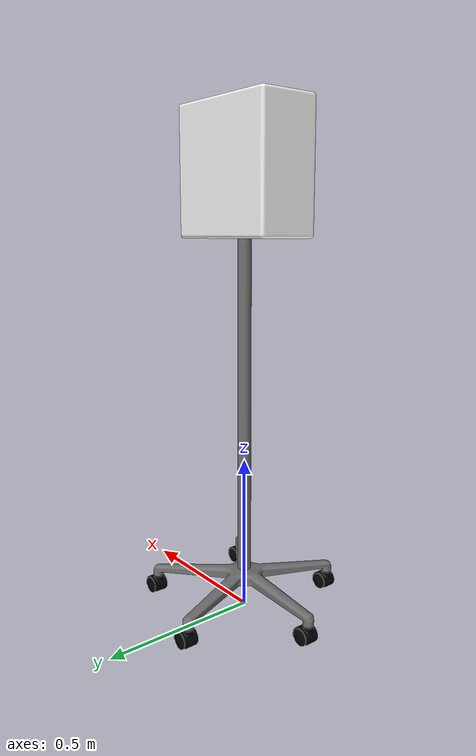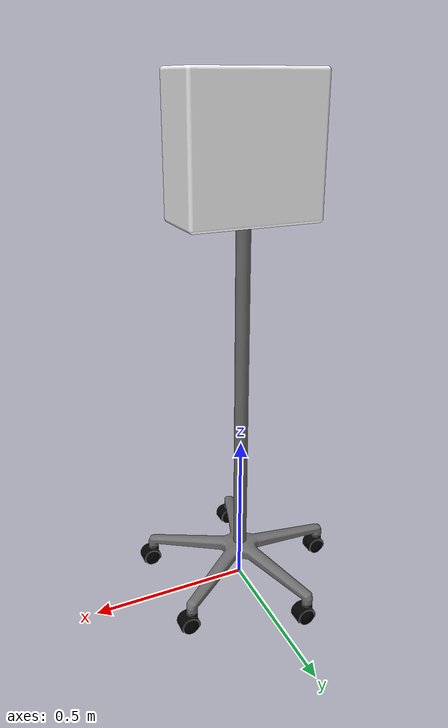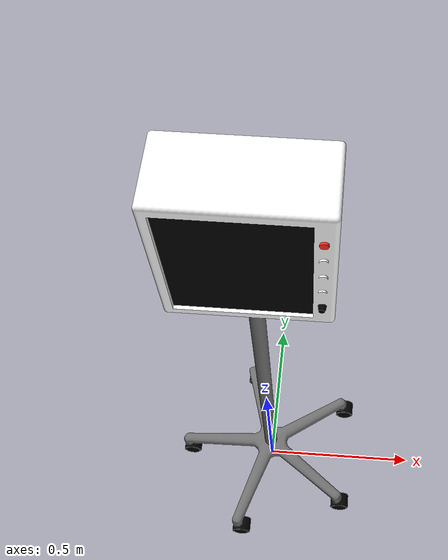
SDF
<?xml version="1.0" ?>
<sdf version="1.0">
  <model name="vitals_monitor">
    <static>true</static>
    <link name="vitals_monitor">
      <collision name="vitals_monitor">
        <pose>0 0 0 0 0 0</pose>
        <geometry>
          <mesh>
            <uri>model://vitals_monitor/meshes/model.dae</uri>
          </mesh>
        </geometry>
      </collision>

      <visual name="vitals_monitor_mesh">
	  <cast_shadows>true</cast_shadows>
        <geometry>
          <mesh>
	        <uri>model://vitals_monitor/meshes/model.dae</uri>
	      </mesh>
        </geometry>
      </visual>
    </link>
  </model>
</sdf>
